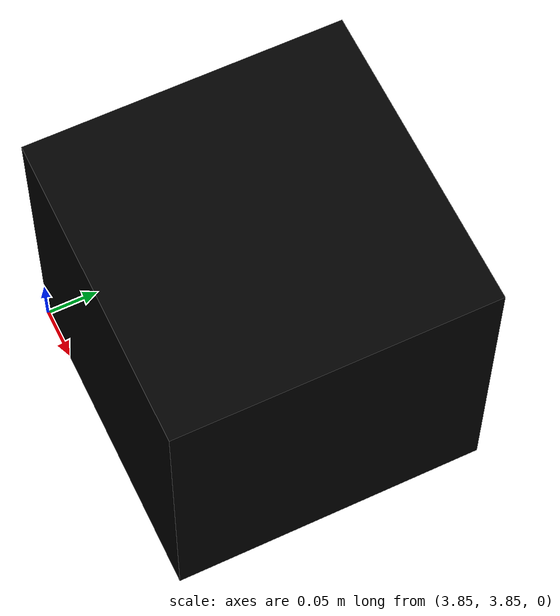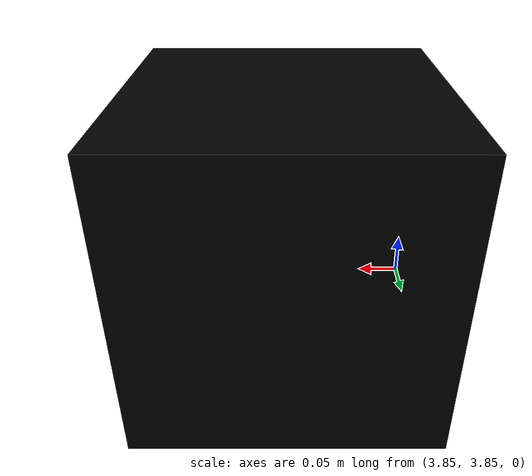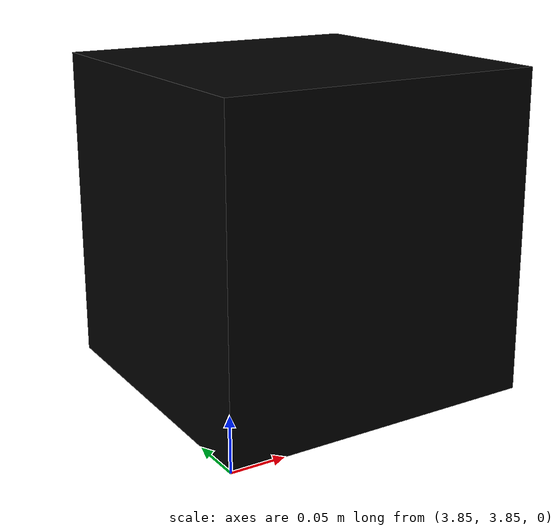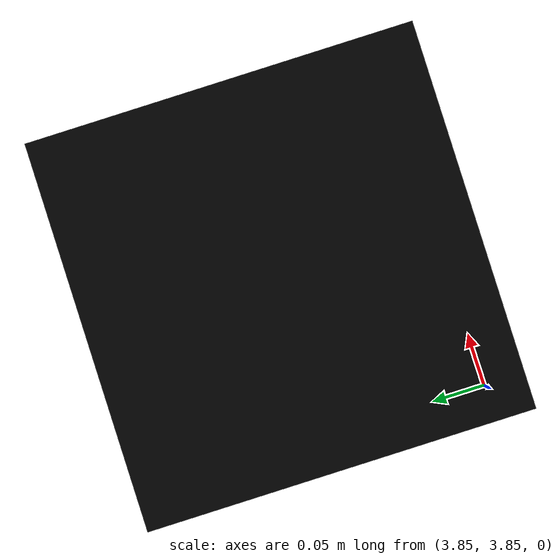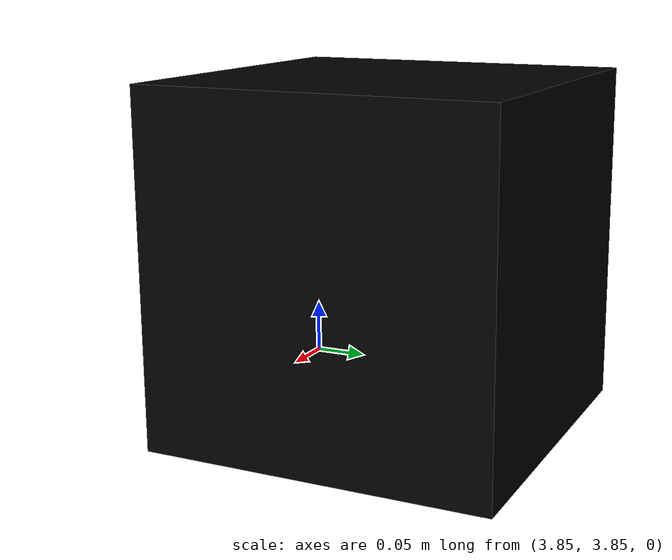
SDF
<?xml version='1.0'?>
<sdf version='1.4'>
  <model name="AruCo_Block_1">
    <static>true</static>
    <link name='chassis'>
            <pose>4 4 0.15 0 0 0</pose>

            <collision name='collision'>
              <geometry>
                <box>
                  <size>.3 .3 .3</size>
                </box>
              </geometry>
            </collision>

            <visual name='visual_0'>
              <geometry>
                <box>
                  <size>.3 .3 .3</size>
                </box>
              </geometry>
              <material>
                <script>
                <uri>model://AruCo_Block_1/materials/scripts</uri>
                <uri>model://AruCo_Block_1/materials/textures</uri>
                <name>block1</name>
                </script>
                <ambient>0 0 0 1</ambient>
                <diffuse>0 0 0 1</diffuse>
                <specular>0 0 0 0</specular>
                <emissive>1 1 1 1</emissive>
              </material>
            </visual>
          </link>
  </model>
</sdf>
